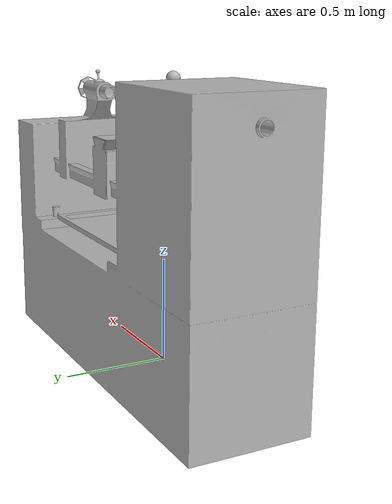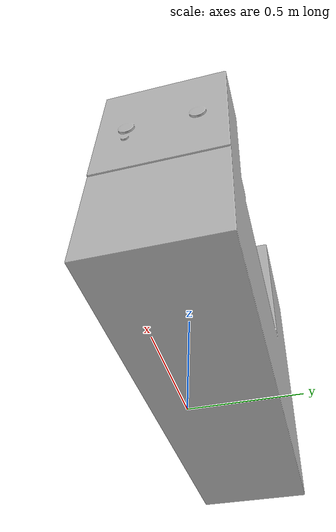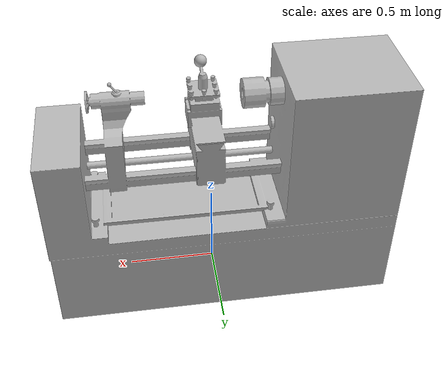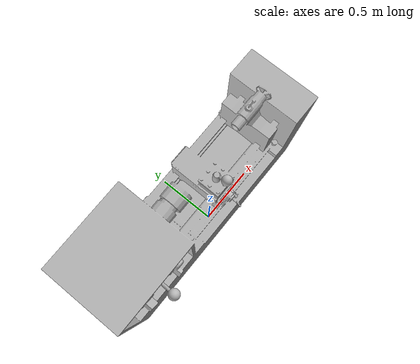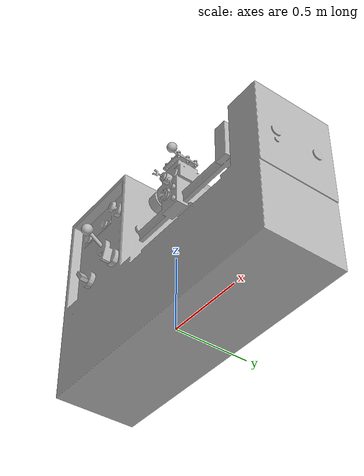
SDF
<?xml version="1.0" ?>
<sdf version="1.5">
  <model name="Torno Mecânico">
    <static>true</static>
    <link name="link">
      <collision name="collision">
        <geometry>
            <mesh>
                <uri>model://torno_mecanico/meshes/torno.stl</uri>
                <scale>1 1 1</scale>
            </mesh>
        </geometry>
      </collision>
      <visual name="visual">
        <geometry>
          <mesh>
            <uri>model://torno_mecanico/meshes/torno.stl</uri>
            <scale>1 1 1</scale>
          </mesh>
        </geometry>
      </visual>
    </link>
    <gazebo reference="link">
      <material>Gazebo/White</material>
    </gazebo>
  </model>
</sdf>
